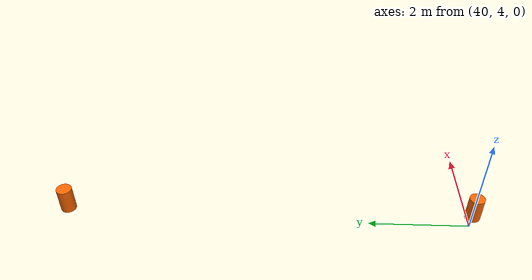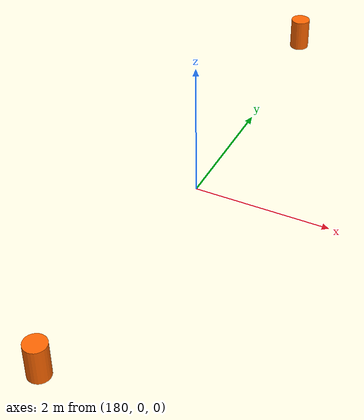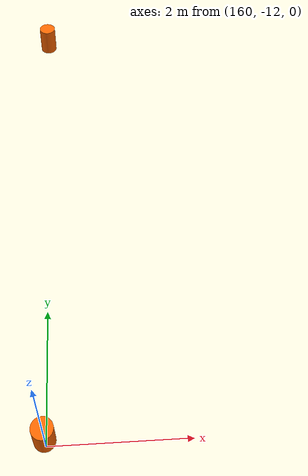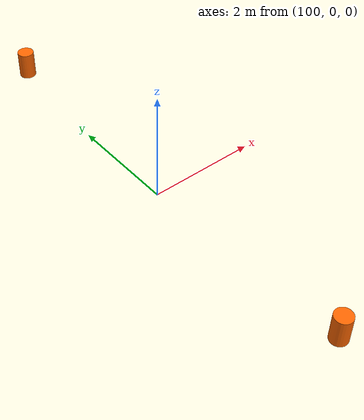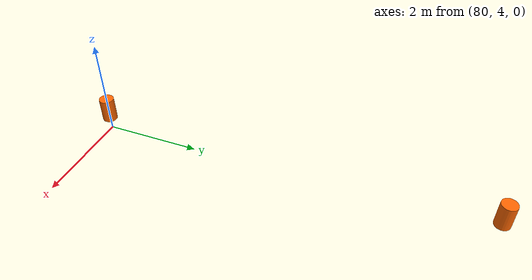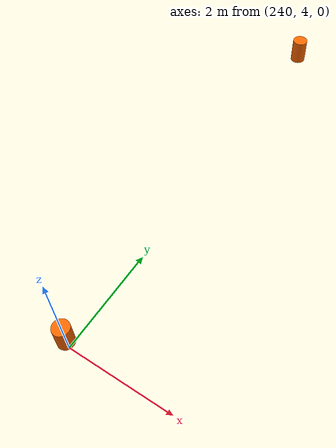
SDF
<sdf version="1.6">
 <world name="ida_parkur">
  <scene>
   <sky><clouds><speed>12</speed></clouds></sky>
   <fog>
    <type>linear</type>
    <color>0.1 0.2 0.3 1</color>
    <density>0.1</density>
    <start>10</start>
    <end>500</end>
   </fog>
  </scene>
  <include><uri>model://sun</uri></include>
  <model name="kd_sol_1">
   <static>true</static>
   <pose>20 4 0.5 0 0 0</pose>
   <link name="link">
    <collision name="c">
     <geometry><cylinder><radius>0.15</radius><length>0.5</length></cylinder></geometry>
    </collision>
    <visual name="v">
     <geometry><cylinder><radius>0.15</radius><length>0.5</length></cylinder></geometry>
     <material><ambient>1 0.4 0 1</ambient><diffuse>1 0.4 0 1</diffuse></material>
    </visual>
   </link>
  </model>
  <model name="kd_sag_1">
   <static>true</static>
   <pose>20 -4 0.5 0 0 0</pose>
   <link name="link">
    <collision name="c">
     <geometry><cylinder><radius>0.15</radius><length>0.5</length></cylinder></geometry>
    </collision>
    <visual name="v">
     <geometry><cylinder><radius>0.15</radius><length>0.5</length></cylinder></geometry>
     <material><ambient>1 0.4 0 1</ambient><diffuse>1 0.4 0 1</diffuse></material>
    </visual>
   </link>
  </model>
  <model name="kd_sol_2">
   <static>true</static>
   <pose>40 12 0.5 0 0 0</pose>
   <link name="link">
    <collision name="c">
     <geometry><cylinder><radius>0.15</radius><length>0.5</length></cylinder></geometry>
    </collision>
    <visual name="v">
     <geometry><cylinder><radius>0.15</radius><length>0.5</length></cylinder></geometry>
     <material><ambient>1 0.4 0 1</ambient><diffuse>1 0.4 0 1</diffuse></material>
    </visual>
   </link>
  </model>
  <model name="kd_sag_2">
   <static>true</static>
   <pose>40 4 0.5 0 0 0</pose>
   <link name="link">
    <collision name="c">
     <geometry><cylinder><radius>0.15</radius><length>0.5</length></cylinder></geometry>
    </collision>
    <visual name="v">
     <geometry><cylinder><radius>0.15</radius><length>0.5</length></cylinder></geometry>
     <material><ambient>1 0.4 0 1</ambient><diffuse>1 0.4 0 1</diffuse></material>
    </visual>
   </link>
  </model>
  <model name="kd_sol_3">
   <static>true</static>
   <pose>60 20 0.5 0 0 0</pose>
   <link name="link">
    <collision name="c">
     <geometry><cylinder><radius>0.15</radius><length>0.5</length></cylinder></geometry>
    </collision>
    <visual name="v">
     <geometry><cylinder><radius>0.15</radius><length>0.5</length></cylinder></geometry>
     <material><ambient>1 0.4 0 1</ambient><diffuse>1 0.4 0 1</diffuse></material>
    </visual>
   </link>
  </model>
  <model name="kd_sag_3">
   <static>true</static>
   <pose>60 12 0.5 0 0 0</pose>
   <link name="link">
    <collision name="c">
     <geometry><cylinder><radius>0.15</radius><length>0.5</length></cylinder></geometry>
    </collision>
    <visual name="v">
     <geometry><cylinder><radius>0.15</radius><length>0.5</length></cylinder></geometry>
     <material><ambient>1 0.4 0 1</ambient><diffuse>1 0.4 0 1</diffuse></material>
    </visual>
   </link>
  </model>
  <model name="kd_sol_4">
   <static>true</static>
   <pose>80 12 0.5 0 0 0</pose>
   <link name="link">
    <collision name="c">
     <geometry><cylinder><radius>0.15</radius><length>0.5</length></cylinder></geometry>
    </collision>
    <visual name="v">
     <geometry><cylinder><radius>0.15</radius><length>0.5</length></cylinder></geometry>
     <material><ambient>1 0.4 0 1</ambient><diffuse>1 0.4 0 1</diffuse></material>
    </visual>
   </link>
  </model>
  <model name="kd_sag_4">
   <static>true</static>
   <pose>80 4 0.5 0 0 0</pose>
   <link name="link">
    <collision name="c">
     <geometry><cylinder><radius>0.15</radius><length>0.5</length></cylinder></geometry>
    </collision>
    <visual name="v">
     <geometry><cylinder><radius>0.15</radius><length>0.5</length></cylinder></geometry>
     <material><ambient>1 0.4 0 1</ambient><diffuse>1 0.4 0 1</diffuse></material>
    </visual>
   </link>
  </model>
  <model name="kd_sol_5">
   <static>true</static>
   <pose>100 4 0.5 0 0 0</pose>
   <link name="link">
    <collision name="c">
     <geometry><cylinder><radius>0.15</radius><length>0.5</length></cylinder></geometry>
    </collision>
    <visual name="v">
     <geometry><cylinder><radius>0.15</radius><length>0.5</length></cylinder></geometry>
     <material><ambient>1 0.4 0 1</ambient><diffuse>1 0.4 0 1</diffuse></material>
    </visual>
   </link>
  </model>
  <model name="kd_sag_5">
   <static>true</static>
   <pose>100 -4 0.5 0 0 0</pose>
   <link name="link">
    <collision name="c">
     <geometry><cylinder><radius>0.15</radius><length>0.5</length></cylinder></geometry>
    </collision>
    <visual name="v">
     <geometry><cylinder><radius>0.15</radius><length>0.5</length></cylinder></geometry>
     <material><ambient>1 0.4 0 1</ambient><diffuse>1 0.4 0 1</diffuse></material>
    </visual>
   </link>
  </model>
  <model name="kd_sol_6">
   <static>true</static>
   <pose>120 -4 0.5 0 0 0</pose>
   <link name="link">
    <collision name="c">
     <geometry><cylinder><radius>0.15</radius><length>0.5</length></cylinder></geometry>
    </collision>
    <visual name="v">
     <geometry><cylinder><radius>0.15</radius><length>0.5</length></cylinder></geometry>
     <material><ambient>1 0.4 0 1</ambient><diffuse>1 0.4 0 1</diffuse></material>
    </visual>
   </link>
  </model>
  <model name="kd_sag_6">
   <static>true</static>
   <pose>120 -12 0.5 0 0 0</pose>
   <link name="link">
    <collision name="c">
     <geometry><cylinder><radius>0.15</radius><length>0.5</length></cylinder></geometry>
    </collision>
    <visual name="v">
     <geometry><cylinder><radius>0.15</radius><length>0.5</length></cylinder></geometry>
     <material><ambient>1 0.4 0 1</ambient><diffuse>1 0.4 0 1</diffuse></material>
    </visual>
   </link>
  </model>
  <model name="kd_sol_7">
   <static>true</static>
   <pose>140 -12 0.5 0 0 0</pose>
   <link name="link">
    <collision name="c">
     <geometry><cylinder><radius>0.15</radius><length>0.5</length></cylinder></geometry>
    </collision>
    <visual name="v">
     <geometry><cylinder><radius>0.15</radius><length>0.5</length></cylinder></geometry>
     <material><ambient>1 0.4 0 1</ambient><diffuse>1 0.4 0 1</diffuse></material>
    </visual>
   </link>
  </model>
  <model name="kd_sag_7">
   <static>true</static>
   <pose>140 -20 0.5 0 0 0</pose>
   <link name="link">
    <collision name="c">
     <geometry><cylinder><radius>0.15</radius><length>0.5</length></cylinder></geometry>
    </collision>
    <visual name="v">
     <geometry><cylinder><radius>0.15</radius><length>0.5</length></cylinder></geometry>
     <material><ambient>1 0.4 0 1</ambient><diffuse>1 0.4 0 1</diffuse></material>
    </visual>
   </link>
  </model>
  <model name="kd_sol_8">
   <static>true</static>
   <pose>160 -4 0.5 0 0 0</pose>
   <link name="link">
    <collision name="c">
     <geometry><cylinder><radius>0.15</radius><length>0.5</length></cylinder></geometry>
    </collision>
    <visual name="v">
     <geometry><cylinder><radius>0.15</radius><length>0.5</length></cylinder></geometry>
     <material><ambient>1 0.4 0 1</ambient><diffuse>1 0.4 0 1</diffuse></material>
    </visual>
   </link>
  </model>
  <model name="kd_sag_8">
   <static>true</static>
   <pose>160 -12 0.5 0 0 0</pose>
   <link name="link">
    <collision name="c">
     <geometry><cylinder><radius>0.15</radius><length>0.5</length></cylinder></geometry>
    </collision>
    <visual name="v">
     <geometry><cylinder><radius>0.15</radius><length>0.5</length></cylinder></geometry>
     <material><ambient>1 0.4 0 1</ambient><diffuse>1 0.4 0 1</diffuse></material>
    </visual>
   </link>
  </model>
  <model name="kd_sol_9">
   <static>true</static>
   <pose>180 4 0.5 0 0 0</pose>
   <link name="link">
    <collision name="c">
     <geometry><cylinder><radius>0.15</radius><length>0.5</length></cylinder></geometry>
    </collision>
    <visual name="v">
     <geometry><cylinder><radius>0.15</radius><length>0.5</length></cylinder></geometry>
     <material><ambient>1 0.4 0 1</ambient><diffuse>1 0.4 0 1</diffuse></material>
    </visual>
   </link>
  </model>
  <model name="kd_sag_9">
   <static>true</static>
   <pose>180 -4 0.5 0 0 0</pose>
   <link name="link">
    <collision name="c">
     <geometry><cylinder><radius>0.15</radius><length>0.5</length></cylinder></geometry>
    </collision>
    <visual name="v">
     <geometry><cylinder><radius>0.15</radius><length>0.5</length></cylinder></geometry>
     <material><ambient>1 0.4 0 1</ambient><diffuse>1 0.4 0 1</diffuse></material>
    </visual>
   </link>
  </model>
  <model name="kd_sol_10">
   <static>true</static>
   <pose>200 12 0.5 0 0 0</pose>
   <link name="link">
    <collision name="c">
     <geometry><cylinder><radius>0.15</radius><length>0.5</length></cylinder></geometry>
    </collision>
    <visual name="v">
     <geometry><cylinder><radius>0.15</radius><length>0.5</length></cylinder></geometry>
     <material><ambient>1 0.4 0 1</ambient><diffuse>1 0.4 0 1</diffuse></material>
    </visual>
   </link>
  </model>
  <model name="kd_sag_10">
   <static>true</static>
   <pose>200 4 0.5 0 0 0</pose>
   <link name="link">
    <collision name="c">
     <geometry><cylinder><radius>0.15</radius><length>0.5</length></cylinder></geometry>
    </collision>
    <visual name="v">
     <geometry><cylinder><radius>0.15</radius><length>0.5</length></cylinder></geometry>
     <material><ambient>1 0.4 0 1</ambient><diffuse>1 0.4 0 1</diffuse></material>
    </visual>
   </link>
  </model>
  <model name="kd_sol_11">
   <static>true</static>
   <pose>220 20 0.5 0 0 0</pose>
   <link name="link">
    <collision name="c">
     <geometry><cylinder><radius>0.15</radius><length>0.5</length></cylinder></geometry>
    </collision>
    <visual name="v">
     <geometry><cylinder><radius>0.15</radius><length>0.5</length></cylinder></geometry>
     <material><ambient>1 0.4 0 1</ambient><diffuse>1 0.4 0 1</diffuse></material>
    </visual>
   </link>
  </model>
  <model name="kd_sag_11">
   <static>true</static>
   <pose>220 12 0.5 0 0 0</pose>
   <link name="link">
    <collision name="c">
     <geometry><cylinder><radius>0.15</radius><length>0.5</length></cylinder></geometry>
    </collision>
    <visual name="v">
     <geometry><cylinder><radius>0.15</radius><length>0.5</length></cylinder></geometry>
     <material><ambient>1 0.4 0 1</ambient><diffuse>1 0.4 0 1</diffuse></material>
    </visual>
   </link>
  </model>
  <model name="kd_sol_12">
   <static>true</static>
   <pose>240 12 0.5 0 0 0</pose>
   <link name="link">
    <collision name="c">
     <geometry><cylinder><radius>0.15</radius><length>0.5</length></cylinder></geometry>
    </collision>
    <visual name="v">
     <geometry><cylinder><radius>0.15</radius><length>0.5</length></cylinder></geometry>
     <material><ambient>1 0.4 0 1</ambient><diffuse>1 0.4 0 1</diffuse></material>
    </visual>
   </link>
  </model>
  <model name="kd_sag_12">
   <static>true</static>
   <pose>240 4 0.5 0 0 0</pose>
   <link name="link">
    <collision name="c">
     <geometry><cylinder><radius>0.15</radius><length>0.5</length></cylinder></geometry>
    </collision>
    <visual name="v">
     <geometry><cylinder><radius>0.15</radius><length>0.5</length></cylinder></geometry>
     <material><ambient>1 0.4 0 1</ambient><diffuse>1 0.4 0 1</diffuse></material>
    </visual>
   </link>
  </model>
 </world>
</sdf>
